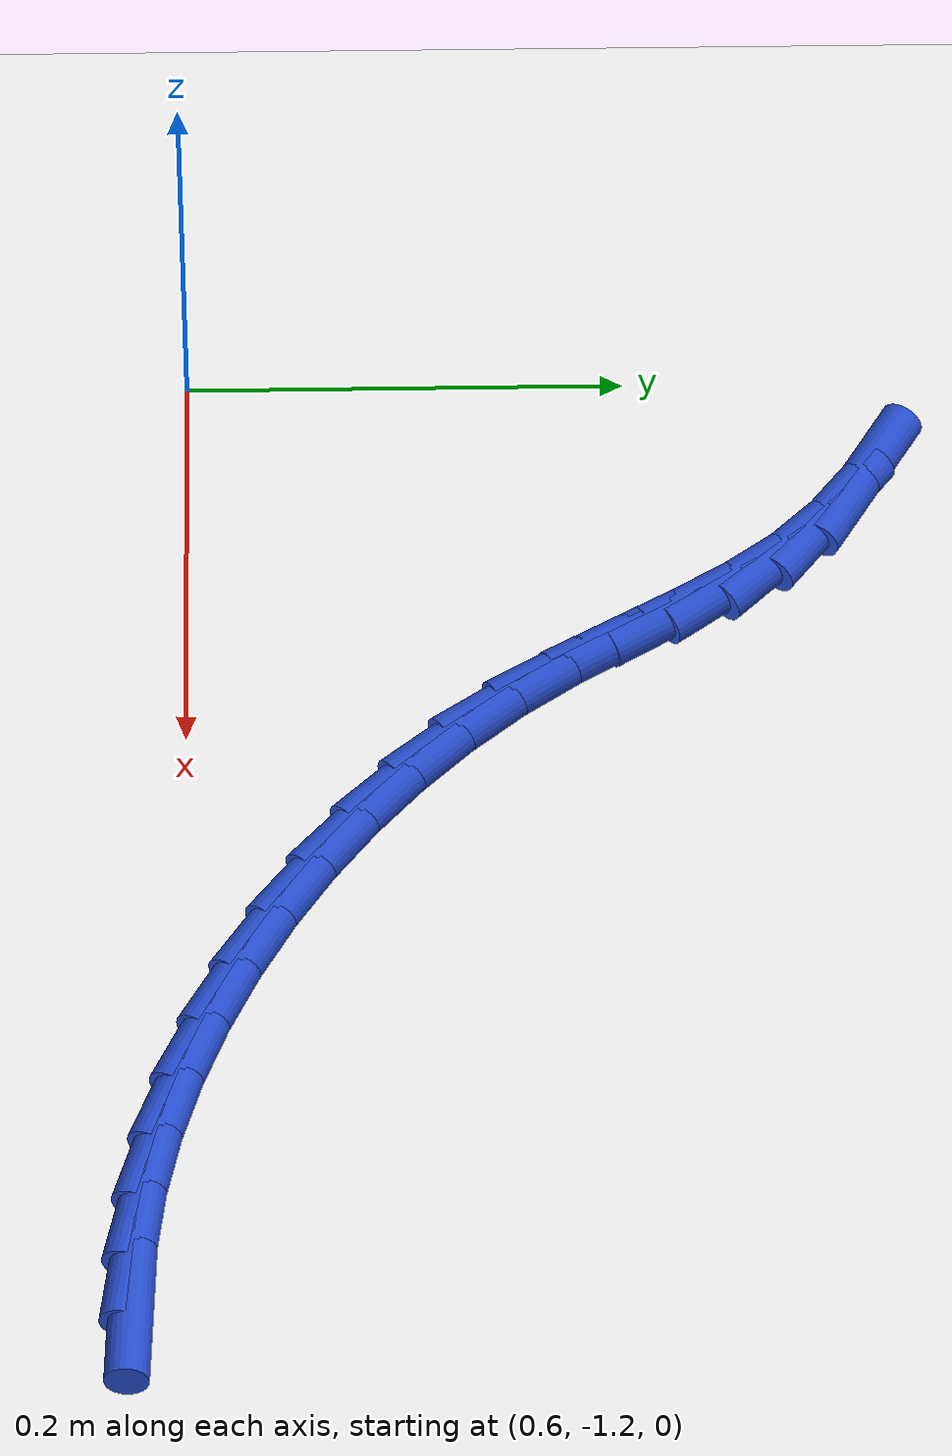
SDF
<sdf version="1.6">
 <world name="default">
  <model name="ground_plane">
   <static>1</static>
   <link name="link">
    <collision name="collision">
     <geometry><plane><normal>0 0 1</normal><size>100 100</size></plane></geometry>
     <surface><friction><ode><mu>100</mu><mu2>50</mu2></ode></friction></surface>
    </collision>
    <visual name="visual">
     <cast_shadows>0</cast_shadows>
     <geometry><plane><normal>0 0 1</normal><size>100 100</size></plane></geometry>
     <material>
      <script><uri>file://media/materials/scripts/gazebo.material</uri><name>Gazebo/WhiteGlow</name></script>
     </material>
    </visual>
   </link>
  </model>
  <model name="line">
   <link name="link_180">
    <pose>1.1128638636421968 -1.2226452583557346 0.01 0 1.57 -0.04403442269570695</pose>
    <collision name="collision">
     <geometry><cylinder><radius>0.01</radius><length>0.08</length></cylinder></geometry>
    </collision>
    <visual name="visual">
     <material>
      <script><name>Gazebo/Blue</name><uri>file://media/materials/scripts/gazebo.material</uri></script>
     </material>
     <geometry><cylinder><radius>0.01</radius><length>0.08</length></cylinder></geometry>
    </visual>
   </link>
   <link name="link_181">
    <pose>1.082940414725546 -1.2213267442344604 0.01 0 1.57 -0.13688486663389085</pose>
    <collision name="collision">
     <geometry><cylinder><radius>0.01</radius><length>0.08</length></cylinder></geometry>
    </collision>
    <visual name="visual">
     <material>
      <script><name>Gazebo/Blue</name><uri>file://media/materials/scripts/gazebo.material</uri></script>
     </material>
     <geometry><cylinder><radius>0.01</radius><length>0.08</length></cylinder></geometry>
    </visual>
   </link>
   <link name="link_182">
    <pose>1.0526733041649374 -1.217157562286293 0.01 0 1.57 -0.22238065178661232</pose>
    <collision name="collision">
     <geometry><cylinder><radius>0.01</radius><length>0.08</length></cylinder></geometry>
    </collision>
    <visual name="visual">
     <material>
      <script><name>Gazebo/Blue</name><uri>file://media/materials/scripts/gazebo.material</uri></script>
     </material>
     <geometry><cylinder><radius>0.01</radius><length>0.08</length></cylinder></geometry>
    </visual>
   </link>
   <link name="link_183">
    <pose>1.0223096959401379 -1.210291729363565 0.01 0 1.57 -0.3018871546524187</pose>
    <collision name="collision">
     <geometry><cylinder><radius>0.01</radius><length>0.08</length></cylinder></geometry>
    </collision>
    <visual name="visual">
     <material>
      <script><name>Gazebo/Blue</name><uri>file://media/materials/scripts/gazebo.material</uri></script>
     </material>
     <geometry><cylinder><radius>0.01</radius><length>0.08</length></cylinder></geometry>
    </visual>
   </link>
   <link name="link_184">
    <pose>0.9920967540309137 -1.2008832623186116 0.01 0 1.57 -0.3767720881398797</pose>
    <collision name="collision">
     <geometry><cylinder><radius>0.01</radius><length>0.08</length></cylinder></geometry>
    </collision>
    <visual name="visual">
     <material>
      <script><name>Gazebo/Blue</name><uri>file://media/materials/scripts/gazebo.material</uri></script>
     </material>
     <geometry><cylinder><radius>0.01</radius><length>0.08</length></cylinder></geometry>
    </visual>
   </link>
   <link name="link_185">
    <pose>0.9622816424170304 -1.1890861780037647 0.01 0 1.57 -0.44835629684338335</pose>
    <collision name="collision">
     <geometry><cylinder><radius>0.01</radius><length>0.08</length></cylinder></geometry>
    </collision>
    <visual name="visual">
     <material>
      <script><name>Gazebo/Blue</name><uri>file://media/materials/scripts/gazebo.material</uri></script>
     </material>
     <geometry><cylinder><radius>0.01</radius><length>0.08</length></cylinder></geometry>
    </visual>
   </link>
   <link name="link_186">
    <pose>0.9331115250782562 -1.1750544932713591 0.01 0 1.57 -0.5179038712564107</pose>
    <collision name="collision">
     <geometry><cylinder><radius>0.01</radius><length>0.08</length></cylinder></geometry>
    </collision>
    <visual name="visual">
     <material>
      <script><name>Gazebo/Blue</name><uri>file://media/materials/scripts/gazebo.material</uri></script>
     </material>
     <geometry><cylinder><radius>0.01</radius><length>0.08</length></cylinder></geometry>
    </visual>
   </link>
   <link name="link_187">
    <pose>0.9048335659943564 -1.1589422249737287 0.01 0 1.57 -0.5866342856714923</pose>
    <collision name="collision">
     <geometry><cylinder><radius>0.01</radius><length>0.08</length></cylinder></geometry>
    </collision>
    <visual name="visual">
     <material>
      <script><name>Gazebo/Blue</name><uri>file://media/materials/scripts/gazebo.material</uri></script>
     </material>
     <geometry><cylinder><radius>0.01</radius><length>0.08</length></cylinder></geometry>
    </visual>
   </link>
   <link name="link_188">
    <pose>0.8776949291450977 -1.1409033899632068 0.01 0 1.57 -0.655745349234374</pose>
    <collision name="collision">
     <geometry><cylinder><radius>0.01</radius><length>0.08</length></cylinder></geometry>
    </collision>
    <visual name="visual">
     <material>
      <script><name>Gazebo/Blue</name><uri>file://media/materials/scripts/gazebo.material</uri></script>
     </material>
     <geometry><cylinder><radius>0.01</radius><length>0.08</length></cylinder></geometry>
    </visual>
   </link>
   <link name="link_189">
    <pose>0.8519427785102467 -1.1210920050921274 0.01 0 1.57 -0.7264396600497177</pose>
    <collision name="collision">
     <geometry><cylinder><radius>0.01</radius><length>0.08</length></cylinder></geometry>
    </collision>
    <visual name="visual">
     <material>
      <script><name>Gazebo/Blue</name><uri>file://media/materials/scripts/gazebo.material</uri></script>
     </material>
     <geometry><cylinder><radius>0.01</radius><length>0.08</length></cylinder></geometry>
    </visual>
   </link>
   <link name="link_190">
    <pose>0.8278242780695693 -1.0996620872128238 0.01 0 1.57 -0.7999488074677499</pose>
    <collision name="collision">
     <geometry><cylinder><radius>0.01</radius><length>0.08</length></cylinder></geometry>
    </collision>
    <visual name="visual">
     <material>
      <script><name>Gazebo/Blue</name><uri>file://media/materials/scripts/gazebo.material</uri></script>
     </material>
     <geometry><cylinder><radius>0.01</radius><length>0.08</length></cylinder></geometry>
    </visual>
   </link>
   <link name="link_191">
    <pose>0.8055865918028318 -1.0767676531776293 0.01 0 1.57 -0.8775488981699413</pose>
    <collision name="collision">
     <geometry><cylinder><radius>0.01</radius><length>0.08</length></cylinder></geometry>
    </collision>
    <visual name="visual">
     <material>
      <script><name>Gazebo/Blue</name><uri>file://media/materials/scripts/gazebo.material</uri></script>
     </material>
     <geometry><cylinder><radius>0.01</radius><length>0.08</length></cylinder></geometry>
    </visual>
   </link>
   <link name="link_192">
    <pose>0.7854768836898005 -1.052562719838878 0.01 0 1.57 -0.9598861252644817</pose>
    <collision name="collision">
     <geometry><cylinder><radius>0.01</radius><length>0.08</length></cylinder></geometry>
    </collision>
    <visual name="visual">
     <material>
      <script><name>Gazebo/Blue</name><uri>file://media/materials/scripts/gazebo.material</uri></script>
     </material>
     <geometry><cylinder><radius>0.01</radius><length>0.08</length></cylinder></geometry>
    </visual>
   </link>
   <link name="link_193">
    <pose>0.767724005862282 -1.0272114089006419 0.01 0 1.57 -1.0252146481237712</pose>
    <collision name="collision">
     <geometry><cylinder><radius>0.01</radius><length>0.08</length></cylinder></geometry>
    </collision>
    <visual name="visual">
     <material>
      <script><name>Gazebo/Blue</name><uri>file://media/materials/scripts/gazebo.material</uri></script>
     </material>
     <geometry><cylinder><radius>0.01</radius><length>0.08</length></cylinder></geometry>
    </visual>
   </link>
   <link name="link_194">
    <pose>0.7519437689334523 -1.0012161308987824 0.01 0 1.57 -1.0448094430174601</pose>
    <collision name="collision">
     <geometry><cylinder><radius>0.01</radius><length>0.08</length></cylinder></geometry>
    </collision>
    <visual name="visual">
     <material>
      <script><name>Gazebo/Blue</name><uri>file://media/materials/scripts/gazebo.material</uri></script>
     </material>
     <geometry><cylinder><radius>0.01</radius><length>0.08</length></cylinder></geometry>
    </visual>
   </link>
   <link name="link_195">
    <pose>0.7370084994498428 -0.9754895660633288 0.01 0 1.57 -1.0140359382232635</pose>
    <collision name="collision">
     <geometry><cylinder><radius>0.01</radius><length>0.08</length></cylinder></geometry>
    </collision>
    <visual name="visual">
     <material>
      <script><name>Gazebo/Blue</name><uri>file://media/materials/scripts/gazebo.material</uri></script>
     </material>
     <geometry><cylinder><radius>0.01</radius><length>0.08</length></cylinder></geometry>
    </visual>
   </link>
   <link name="link_196">
    <pose>0.7217458188640569 -0.9509690638082757 0.01 0 1.57 -0.9278774232451703</pose>
    <collision name="collision">
     <geometry><cylinder><radius>0.01</radius><length>0.08</length></cylinder></geometry>
    </collision>
    <visual name="visual">
     <material>
      <script><name>Gazebo/Blue</name><uri>file://media/materials/scripts/gazebo.material</uri></script>
     </material>
     <geometry><cylinder><radius>0.01</radius><length>0.08</length></cylinder></geometry>
    </visual>
   </link>
   <link name="link_197">
    <pose>0.7049833486286963 -0.9285919735476165 0.01 0 1.57 -0.7889497894847282</pose>
    <collision name="collision">
     <geometry><cylinder><radius>0.01</radius><length>0.08</length></cylinder></geometry>
    </collision>
    <visual name="visual">
     <material>
      <script><name>Gazebo/Blue</name><uri>file://media/materials/scripts/gazebo.material</uri></script>
     </material>
     <geometry><cylinder><radius>0.01</radius><length>0.08</length></cylinder></geometry>
    </visual>
   </link>
   <link name="link_198">
    <pose>0.685694526104011 -0.9091656487174589 0.01 0 1.57 -0.6477065468889471</pose>
    <collision name="collision">
     <geometry><cylinder><radius>0.01</radius><length>0.08</length></cylinder></geometry>
    </collision>
    <visual name="visual">
     <material>
      <script><name>Gazebo/Blue</name><uri>file://media/materials/scripts/gazebo.material</uri></script>
     </material>
     <geometry><cylinder><radius>0.01</radius><length>0.08</length></cylinder></geometry>
    </visual>
   </link>
   <link name="link_199">
    <pose>0.663831895834575 -0.8926245613383283 0.01 0 1.57 -0.529112350194975</pose>
    <collision name="collision">
     <geometry><cylinder><radius>0.01</radius><length>0.08</length></cylinder></geometry>
    </collision>
    <visual name="visual">
     <material>
      <script><name>Gazebo/Blue</name><uri>file://media/materials/scripts/gazebo.material</uri></script>
     </material>
     <geometry><cylinder><radius>0.01</radius><length>0.08</length></cylinder></geometry>
    </visual>
   </link>
  </model>
 </world>
</sdf>
